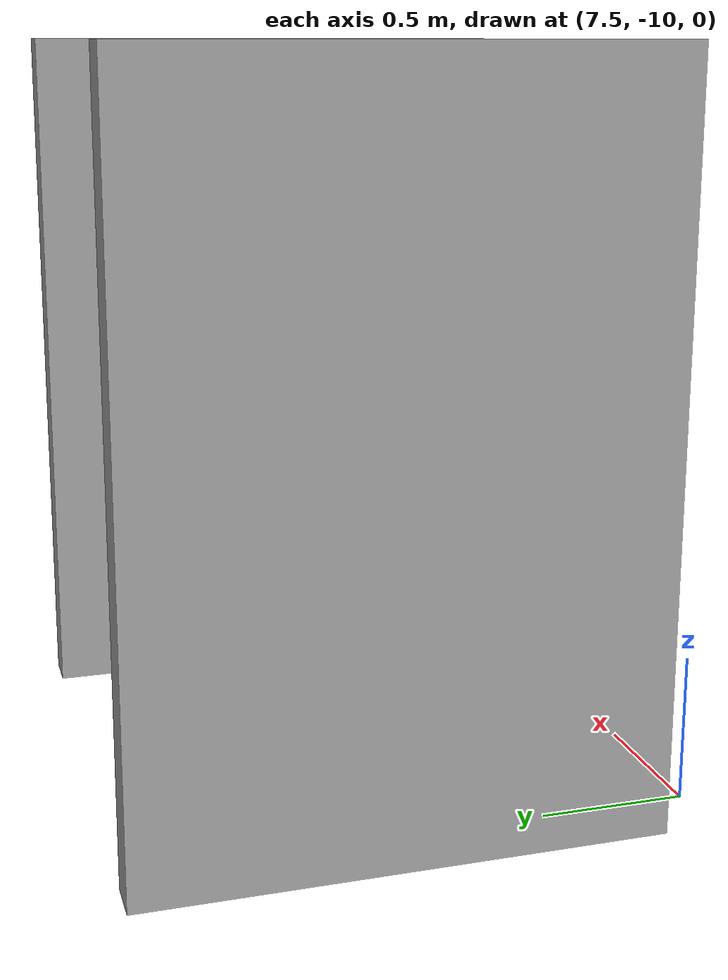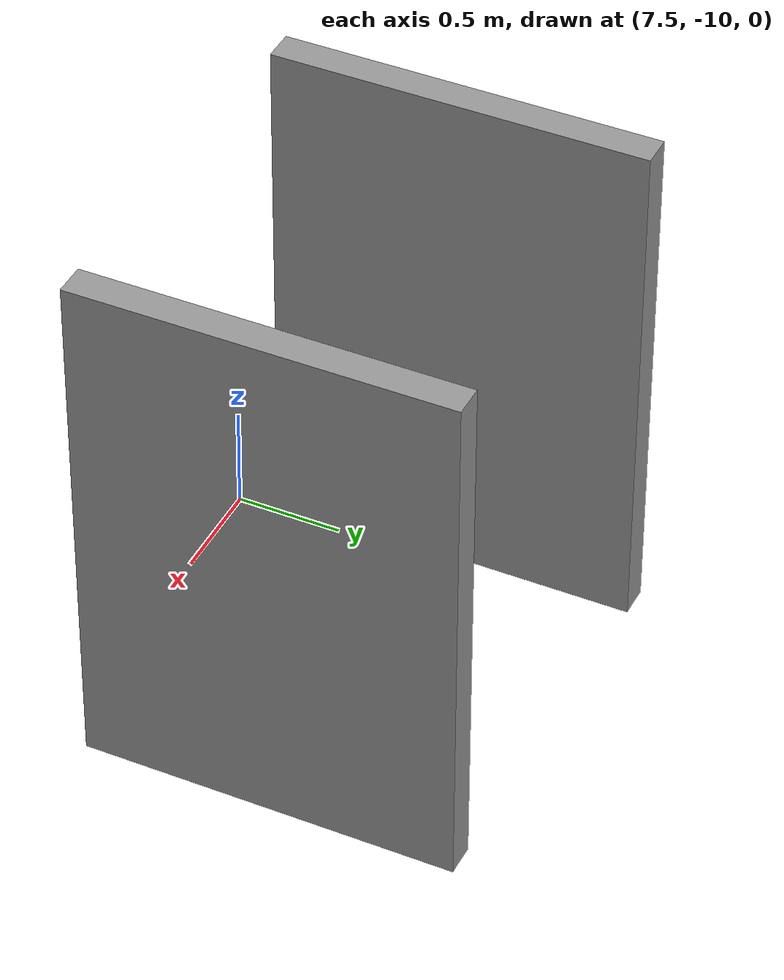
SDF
<?xml version='1.0'?>
<sdf version='1.7'>
  <model name='docking_station'>
    <pose>4.62324 -4.92795 0 0 -0 0</pose>
    <link name='Wall_6'>
      <collision name='Wall_6_Collision'>
        <geometry>
          <box>
            <size>1.75 0.15 2.5</size>
          </box>
        </geometry>
        <pose>0 0 1.25 0 -0 0</pose>
      </collision>
      <visual name='Wall_6_Visual'>
        <pose>0 0 1.25 0 -0 0</pose>
        <geometry>
          <box>
            <size>1.75 0.15 2.5</size>
          </box>
        </geometry>
        <material>
          <script>
            <uri>file://media/materials/scripts/gazebo.material</uri>
            <name>Gazebo/Grey</name>
          </script>
          <ambient>1 1 1 1</ambient>
        </material>
        <meta>
          <layer>0</layer>
        </meta>
      </visual>
      <pose>2.73802 -4.03546 0 0 -0 1.5708</pose>
    </link>
    <link name='Wall_8'>
      <collision name='Wall_8_Collision'>
        <geometry>
          <box>
            <size>1.75 0.15 2.5</size>
          </box>
        </geometry>
        <pose>0 0 1.25 0 -0 0</pose>
      </collision>
      <visual name='Wall_8_Visual'>
        <pose>0 0 1.25 0 -0 0</pose>
        <geometry>
          <box>
            <size>1.75 0.15 2.5</size>
          </box>
        </geometry>
        <material>
          <script>
            <uri>file://media/materials/scripts/gazebo.material</uri>
            <name>Gazebo/Grey</name>
          </script>
          <ambient>1 1 1 1</ambient>
        </material>
        <meta>
          <layer>0</layer>
        </meta>
      </visual>
      <pose>4.54824 -4.05295 0 0 -0 1.5708</pose>
    </link>
    <static>1</static>
  </model>
</sdf>
